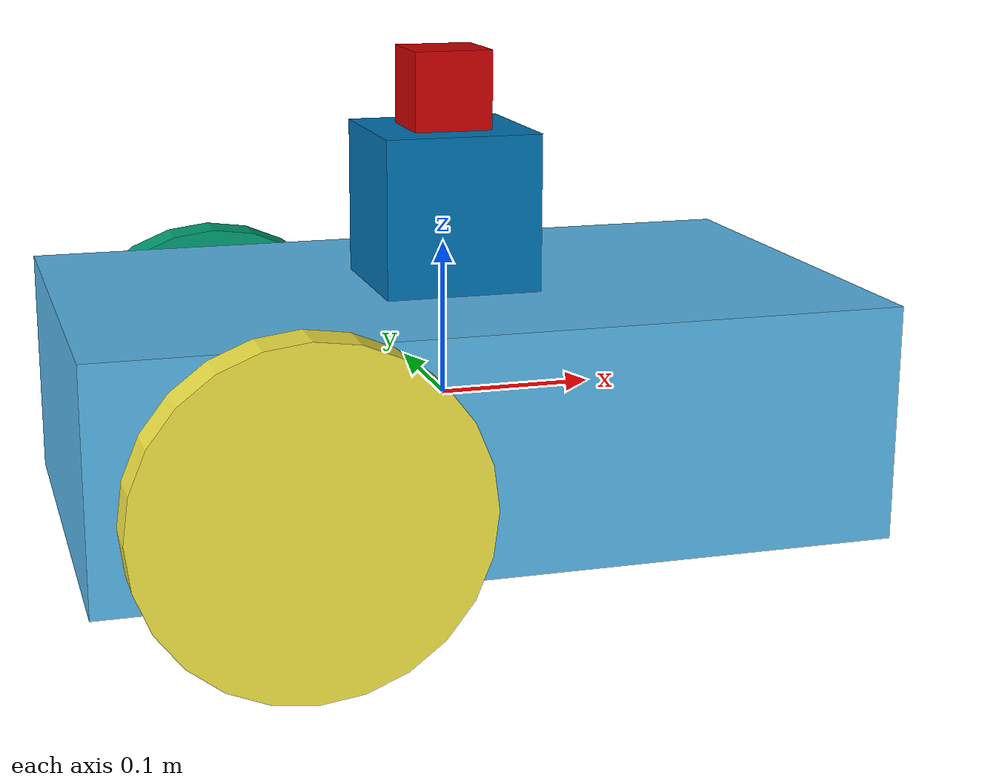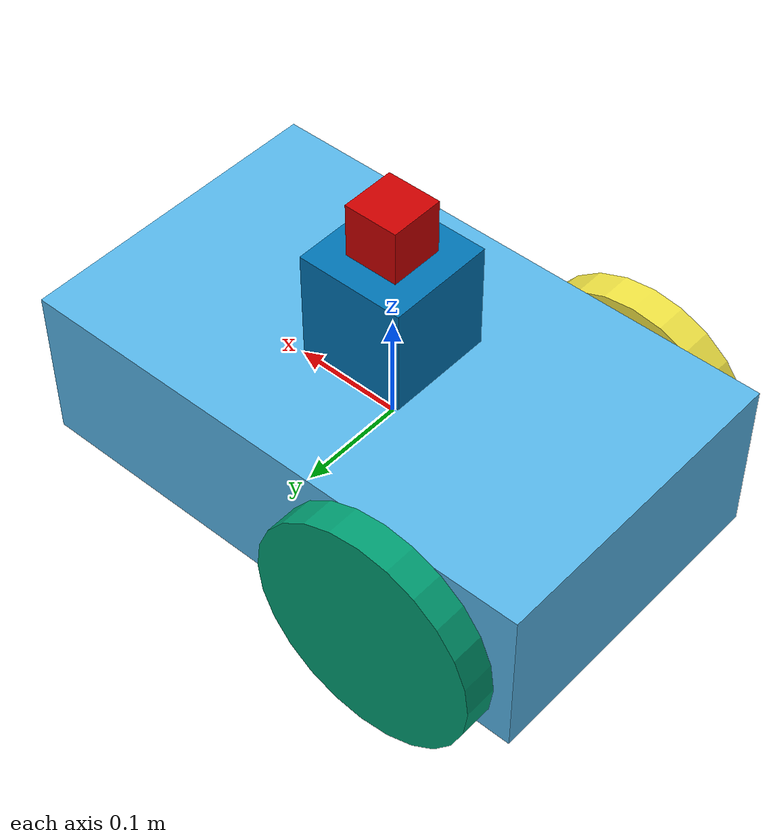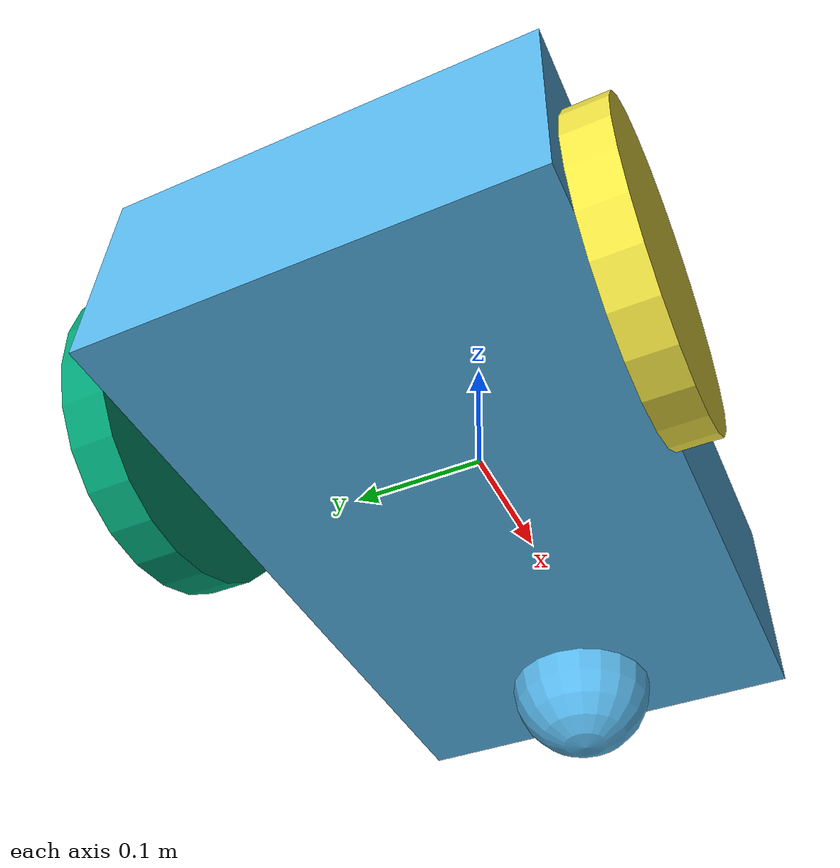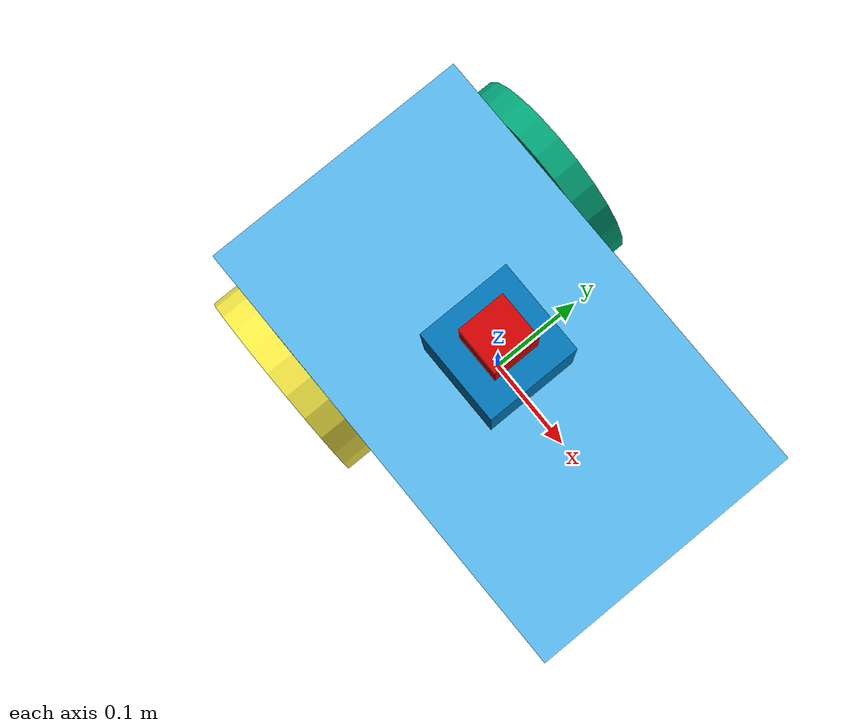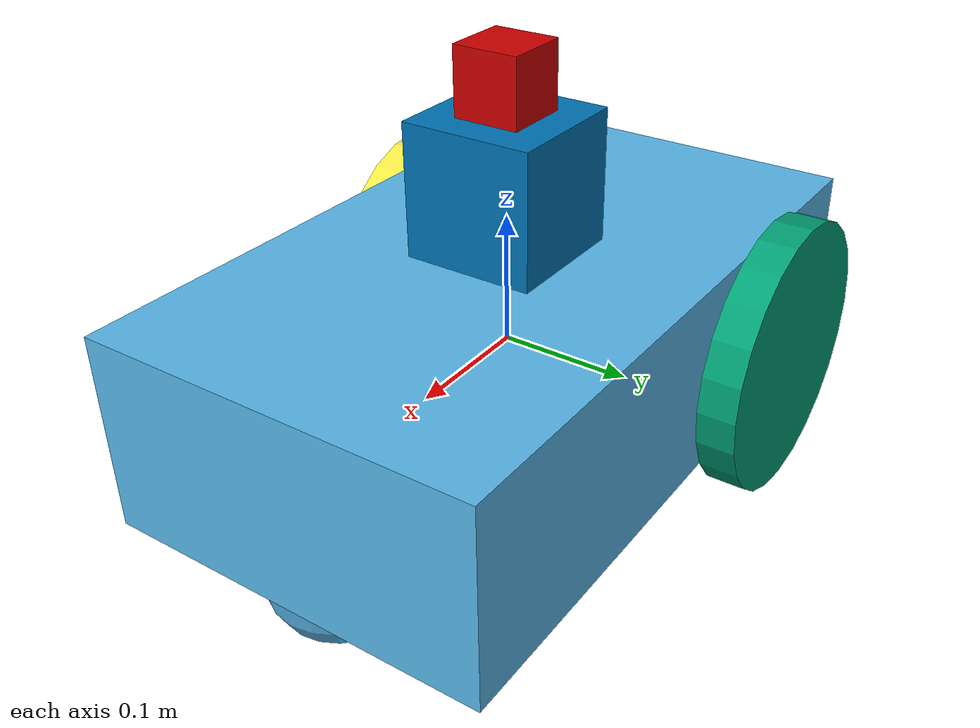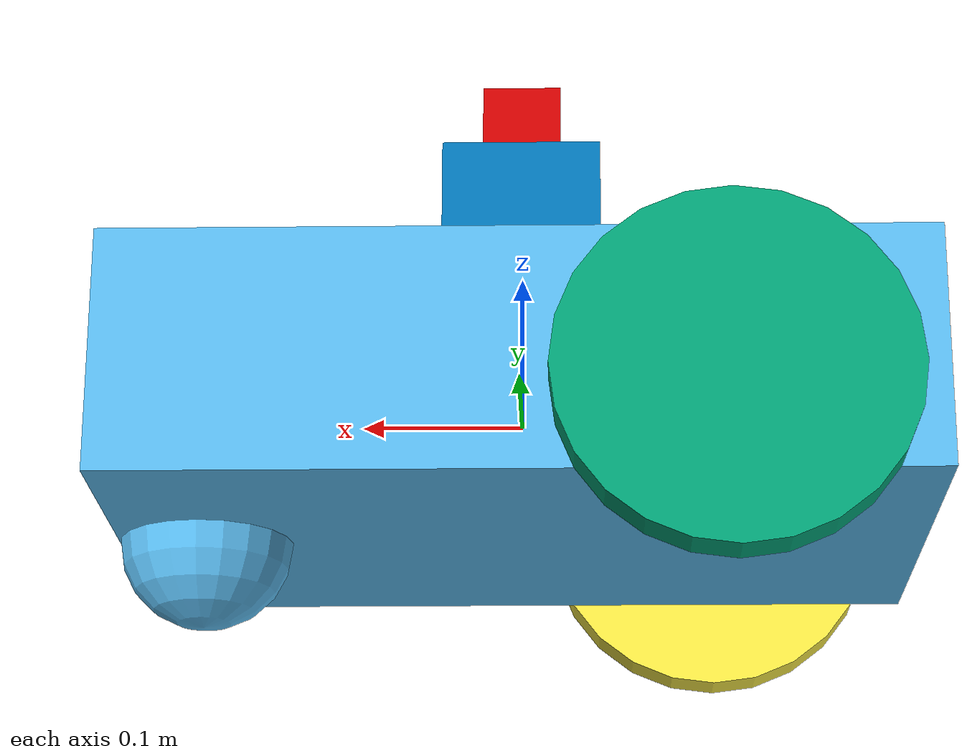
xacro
<?xml version="1.0" encoding="UTF-8"?>
<!-- choose a name space and start xacro -->
<robot name="diff_drive" xmlns:xacro="http://www.ros.org/wiki/xacro">

  <!-- Start by including all required xacro files which hold the macros -->
  <xacro:include filename="$(find simulation_env)/models/auto/auto.gazebo" />
  <xacro:include filename="$(find simulation_env)/models/auto/material.xacro"   />
  <xacro:include filename="$(find simulation_env)/models/auto/macros.xacro"      />
  <xacro:include filename="$(find simulation_env)/models/auto/parameter.xacro"   />

 <!-- Create a dummy link as base link -->
  <link name='base_link'>
    <pose>0 0 0 0 0 0</pose>
  </link>
  <joint type="fixed" name="base_link_to_chassis">
    <child link="chassis_link"/>
    <parent link="base_link"/>
  </joint>

  <!-- Define the chassis of the differential drive robot, which is our base -->
  <link name='chassis_link'>
    <pose>0 0 0 0 0 0</pose>
    <!-- Define inertial system for the chassis -->
    <inertial>
      <mass value="${m_chassis}"/>
      <xacro:box_inertia m="${m_chassis}" x="${x_chassis}" y="${y_chassis}" z="${z_chassis}"/>
    </inertial>
    <!-- Define collision sorrounding box -->
    <collision name='collision'>
      <origin xyz="0 0 0" rpy=" 0 0 0"/>
      <geometry>
        <box size="${x_chassis} ${y_chassis} ${z_chassis}"/>
      </geometry>
    </collision>
    <!-- Define visualization structure -->
    <visual name='base_link_visual'>
	  <origin xyz="0 0 0" rpy=" 0 0 0"/>
      <geometry>
        <box size="${x_chassis} ${y_chassis} ${z_chassis}"/>
      </geometry>
    </visual>

    <!-- Add the caster wheel! Here we simply assume complete slippage, thus we do not require that it rotates! -->
    <collision name='caster_collision'>
      <origin xyz="${-(r_wheel/2)+x_chassis/2} 0 ${-z_chassis/2}" rpy=" 0 0 0"/>
      <geometry>
        <sphere radius="${r_wheel/2}"/>
      </geometry>
      <surface>
        <friction>
          <ode>
            <mu>0</mu>
            <mu2>0</mu2>
            <slip1>1.0</slip1>
            <slip2>1.0</slip2>
          </ode>
        </friction>
      </surface>
    </collision>
    <visual name='caster_visual'>
      <origin xyz="${-(r_wheel/2)+x_chassis/2} 0 ${-z_chassis/2}" rpy=" 0 0 0"/>
      <geometry>
        <sphere radius="${r_wheel/2}"/>
      </geometry>
    </visual>
  </link>

  <!-- Add the wheels for the robot -->
  <link name="left_wheel">
    <collision name="collision">
      <origin xyz="0 0 0" rpy="0 1.5707 1.5707"/>
      <geometry>
        <cylinder radius="${r_wheel}" length="${h_wheel}"/>
      </geometry>
      <surface>
        <friction>
          <ode>
            <mu>1.0</mu>
            <mu2>1.0</mu2>
            <slip1>0.0</slip1>
            <slip2>0.0</slip2>
          </ode>
        </friction>
      </surface>
    </collision>
    <visual name="left_wheel_visual">
      <origin xyz="0 0 0" rpy="0 1.5707 1.5707"/>
      <geometry>
        <cylinder radius="${r_wheel}" length="${h_wheel}"/>
      </geometry>
    </visual>
    <inertial>
      <origin xyz="0 0 0" rpy="0 1.5707 1.5707"/>
      <mass value="${m_wheel}"/>
      <cylinder_inertia m="${m_wheel}" r="${r_wheel}" h="${h_wheel}"/>
      <xacro:cylinder_inertia m="${m_wheel}" r="${r_wheel}" h="${h_wheel}"/>
    </inertial>
  </link>

  <link name="right_wheel">
    <collision name="collision">
      <origin xyz="0 0 0" rpy="0 1.5707 1.5707"/>
      <geometry>
        <cylinder radius="${r_wheel}" length="${h_wheel}"/>
      </geometry>
      <surface>
        <friction>
          <ode>
            <mu>1.0</mu>
            <mu2>1.0</mu2>
            <slip1>0.0</slip1>
            <slip2>0.0</slip2>
          </ode>
        </friction>
      </surface>
    </collision>
    <visual name="right_wheel_visual">
      <origin xyz="0 0 0" rpy="0 1.5707 1.5707"/>
      <geometry>
        <cylinder radius="${r_wheel}" length="${h_wheel}"/>
      </geometry>
    </visual>
    <inertial>
      <origin xyz="0 0 0" rpy="0 1.5707 1.5707"/>
      <mass value="${m_wheel}"/>
      <cylinder_inertia m="${m_wheel}" r="${r_wheel}" h="${h_wheel}"/>
      <xacro:cylinder_inertia m="${m_wheel}" r="${r_wheel}" h="${h_wheel}"/>
    </inertial>
  </link>

  <!-- Set joints for the wheels which can be controlled over ROS -->
  <joint type="continuous" name="left_wheel_hinge">
    <origin xyz="${-x_chassis/4} ${y_chassis/2+h_wheel/2} ${r_wheel/2-z_chassis/2}" rpy="0 0 0"/>
    <child link="left_wheel"/>
    <parent link="base_link"/>
    <axis xyz="0 1 0" rpy="0 0 0"/>
    <limit effort="100" velocity="100"/>
    <joint_properties damping="0.0" friction="0.0"/>
  </joint>
  <joint type="continuous" name="right_wheel_hinge">
    <origin xyz="${-x_chassis/4} ${-y_chassis/2-h_wheel/2} ${r_wheel/2-z_chassis/2}" rpy="0 0 0"/>
    <child link="right_wheel"/>
    <parent link="base_link"/>
    <axis xyz="0 1 0" rpy="0 0 0"/>
    <limit effort="100" velocity="100"/>
    <joint_properties damping="0.0" friction="0.0"/>
  </joint>

  <!-- Add a Hokuyo Laser -->
  <link name="laser_link">
    <collision>
      <origin xyz="0 0 0" rpy="0 0 0"/>
      <geometry>
		<box size="${x_hokuyo} ${y_hokuyo} ${z_hokuyo}"/>
      </geometry>
    </collision>
    <visual>
      <origin xyz="0 0 0" rpy="0 0 0"/>
      <geometry>
        <box size="${x_hokuyo} ${y_hokuyo} ${z_hokuyo}"/>
      </geometry>
    </visual>
    <inertial>
      <mass value="1e-5" />
      <origin xyz="0 0 0" rpy="0 0 0"/>
      <inertia ixx="1e-6" ixy="0" ixz="0" iyy="1e-6" iyz="0" izz="1e-6" />
    </inertial>
  </link>

  <joint name="hokuyo_joint" type="fixed">
    <axis xyz="0 1 0" />
    <origin xyz="0 0 ${z_chassis/2 + z_hokuyo/2}" rpy="0 0 0"/>
    <parent link="base_link"/>
    <child link="laser_link"/>
  </joint>
  <!-- Add the camera link -->
  <link name="camera_link">
    <collision>
      <origin xyz="0 0 0" rpy="0 0 0"/>
      <geometry>
    <box size="${camera_size} ${camera_size} ${camera_size}"/>
      </geometry>
    </collision>

    <visual>
      <origin xyz="0 0 0" rpy="0 0 0"/>
      <geometry>
    <box size="${camera_size} ${camera_size} ${camera_size}"/>
      </geometry>
      <material name="red"/>
    </visual>

    <inertial>
      <mass value="1e-5" />
      <origin xyz="0 0 0" rpy="0 0 0"/>
      <inertia ixx="1e-6" ixy="0" ixz="0" iyy="1e-6" iyz="0" izz="1e-6" />
    </inertial>
  </link>

  <joint name="camera_joint" type="fixed">
    <axis xyz="0 1 0" />
    <origin xyz="0 0 ${z_hokuyo/2 + camera_size/2}" rpy="0 0 0"/>
    <parent link="laser_link"/>
    <child link="camera_link"/>
  </joint>

</robot>

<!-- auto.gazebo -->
<robot xmlns:xacro="http://www.ros.org/wiki/xacro">
  <xacro:include filename="$(find simulation_env)/models/auto/parameter.xacro" />

  <!-- TODO: Add same update rates over parameter setting and define all parameters in config -->
  <!-- Differential Drive controller from Gazebo, TODO: Add noise by adapting the plugin -->
  <gazebo>
    <plugin name="differential_drive_controller" filename="libgazebo_ros_diff_drive.so">
      <alwaysOn>true</alwaysOn>
      <updateRate>20</updateRate>
      <leftJoint>left_wheel_hinge</leftJoint>
      <rightJoint>right_wheel_hinge</rightJoint>
      <wheelSeparation>${L_wheel*2}</wheelSeparation>
      <wheelDiameter>${r_wheel*2}</wheelDiameter>
      <wheelTorque>${torque_wheel}</wheelTorque>
      <commandTopic>cmd_vel</commandTopic>
      <odometryTopic>odom</odometryTopic>
      <odometryFrame>odom_link</odometryFrame>
      <robotBaseFrame>base_link</robotBaseFrame>
      <legacyMode>false</legacyMode>
    </plugin>
  </gazebo>
  <gazebo reference="base_link">
    <material>Gazebo/Orange</material>
  </gazebo>
  <!-- Hukuyo Laser Plugin -->
  <gazebo reference="laser_link">
    <sensor type="ray" name="head_hokuyo_sensor">
      <pose>0 0 0 0 0 0</pose>
      <visualize>true</visualize>
      <update_rate>20</update_rate>
      <ray>
        <scan>
          <horizontal>
            <samples>720</samples>
            <resolution>1</resolution>
            <min_angle>-1.570796</min_angle>
            <max_angle>1.570796</max_angle>
          </horizontal>
        </scan>
        <range>
          <min>0.10</min>
          <max>10.0</max>
          <resolution>0.01</resolution>
        </range>
        <noise>
          <type>gaussian</type>
          <mean>0.0</mean>
          <stddev>0.01</stddev>
        </noise>
      </ray>
      <plugin name="gazebo_ros_head_hokuyo_controller" filename="libgazebo_ros_laser.so">
        <topicName>/scan</topicName>
        <frameName>/laser_link</frameName>
      </plugin>
    </sensor>
  </gazebo>

  <!-- RGB Camera Plugin -->
  <gazebo reference="camera_link">
    <sensor type="camera" name="camera">
      <update_rate>20.0</update_rate>
      <camera name="front">
        <horizontal_fov>1.3962634</horizontal_fov>
        <image>
          <width>800</width>
          <height>800</height>
          <format>R8G8B8</format>
        </image>
        <clip>
          <near>0.02</near>
          <far>300</far>
        </clip>
        <noise>
          <type>gaussian</type>
          <mean>0.0</mean>
          <stddev>0.007</stddev>
        </noise>
      </camera>
      <plugin name="camera_controller" filename="libgazebo_ros_camera.so">
        <alwaysOn>true</alwaysOn>
        <updateRate>0.0</updateRate>
        <cameraName>camera</cameraName>
        <imageTopicName>image_raw</imageTopicName>
        <cameraInfoTopicName>camera_info</cameraInfoTopicName>
        <frameName>camera_link</frameName>
        <hackBaseline>0.07</hackBaseline>
        <distortionK1>0.0</distortionK1>
        <distortionK2>0.0</distortionK2>
        <distortionK3>0.0</distortionK3>
        <distortionT1>0.0</distortionT1>
        <distortionT2>0.0</distortionT2>
      </plugin>
    </sensor>
  </gazebo>
</robot>

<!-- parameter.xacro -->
<robot xmlns:xacro="http://www.ros.org/wiki/xacro">
  <xacro:property name="x_chassis" value="0.5" />
  <xacro:property name="y_chassis" value="0.3" />
  <xacro:property name="z_chassis" value="0.15" />
  <xacro:property name="m_chassis" value="10.0" />

  <!-- Parameter for the wheels, radius [m], height [m], mass [kg], torque [Nm], wheelbase [m] -->
  <xacro:property name="r_wheel" value="0.1075"/>
  <xacro:property name="h_wheel" value="0.03" />
  <xacro:property name="m_wheel" value="3.0" />
  <xacro:property name="torque_wheel" value="10" />
  <xacro:property name="L_wheel" value="0.1789" />

  <xacro:property name="x_hokuyo" value="0.1" />
  <xacro:property name="y_hokuyo" value="0.1" />
  <xacro:property name="z_hokuyo" value="0.1" />
  <xacro:property name="camera_size" value="0.05" />
</robot>

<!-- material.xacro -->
<robot xmlns:xacro="http://www.ros.org/wiki/xacro">

  <!-- Here we define the material color we may want to use -->
  <material name="black">
    <color rgba="0.0 0.0 0.0 1.0"/>
  </material>

  <material name="blue">
    <color rgba="0.0 0.0 0.8 1.0"/>
  </material>

  <material name="green">
    <color rgba="0.0 0.8 0.0 1.0"/>
  </material>

  <material name="grey">
    <color rgba="0.2 0.2 0.2 1.0"/>
  </material>

  <material name="orange">
    <color rgba="${255/255} ${108/255} ${10/255} 1.0"/>
  </material>

  <material name="brown">
    <color rgba="${222/255} ${207/255} ${195/255} 1.0"/>
  </material>

  <material name="red">
    <color rgba="0.8 0.0 0.0 1.0"/>
  </material>

  <material name="white">
    <color rgba="1.0 1.0 1.0 1.0"/>
  </material>

</robot>
